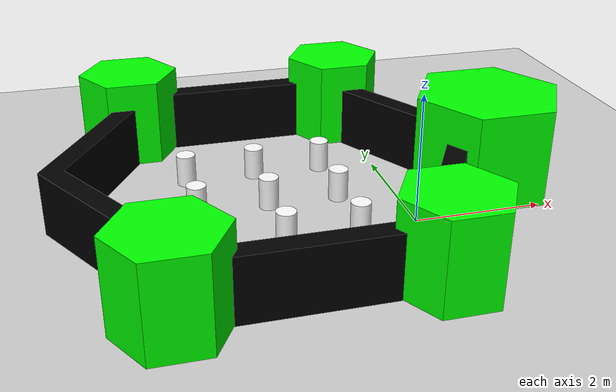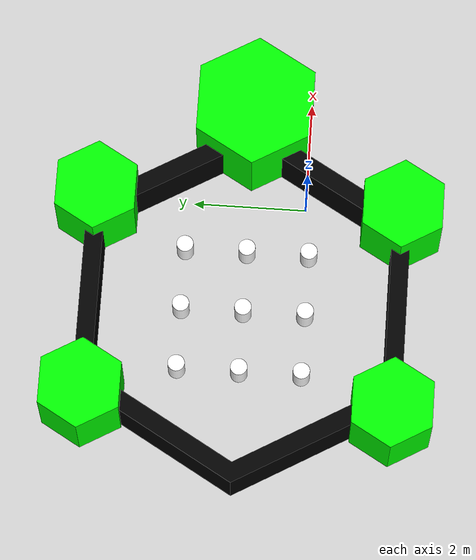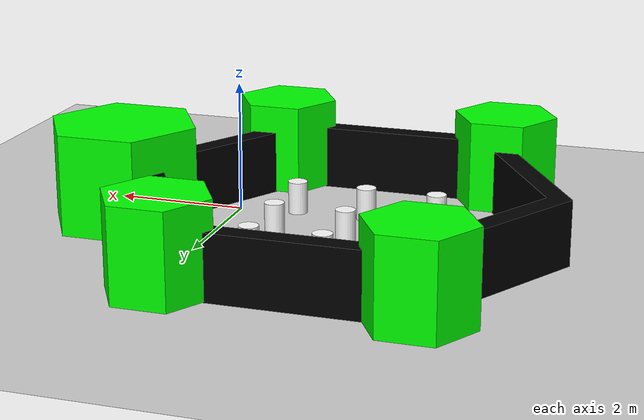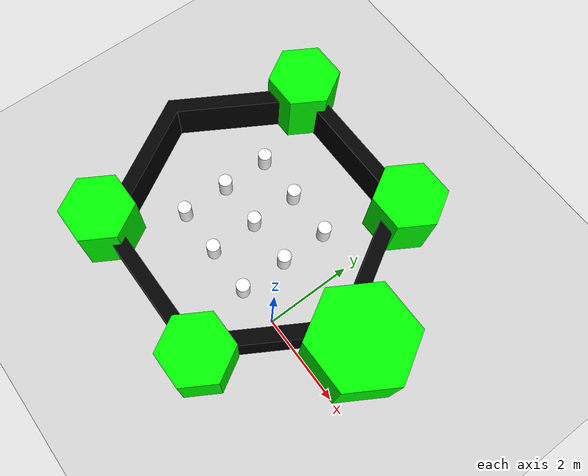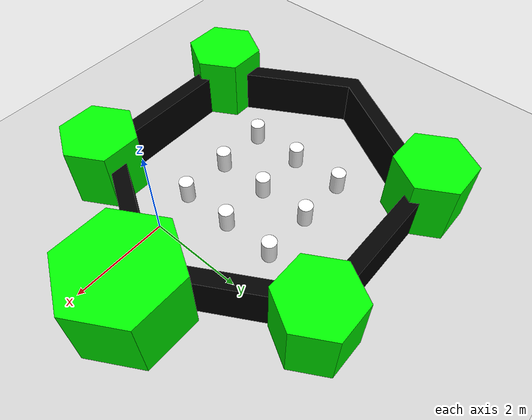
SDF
<?xml version="1.0"?>
<sdf version="1.8">
  <world name="turtlebot3_world">
    <physics type="ode">
      <real_time_update_rate>1000.0</real_time_update_rate>
      <max_step_size>0.001</max_step_size>
      <real_time_factor>1</real_time_factor>
      <ode>
        <solver>
          <type>quick</type>
          <iters>150</iters>
          <precon_iters>0</precon_iters>
          <sor>1.400000</sor>
          <use_dynamic_moi_rescaling>1</use_dynamic_moi_rescaling>
        </solver>
        <constraints>
          <cfm>0.00001</cfm>
          <erp>0.2</erp>
          <contact_max_correcting_vel>2000.000000</contact_max_correcting_vel>
          <contact_surface_layer>0.01000</contact_surface_layer>
        </constraints>
      </ode>
      <gravity>0 0 -9.8</gravity>
    </physics>
    <spherical_coordinates>
      <surface_model>EARTH_WGS84</surface_model>
      <world_frame_orientation>ENU</world_frame_orientation>
      <latitude_deg>47.397971057728974</latitude_deg>
      <longitude_deg> 8.546163739800146</longitude_deg>
      <elevation>0</elevation>
    </spherical_coordinates>

    <include>
      <uri>https://fuel.gazebosim.org/1.0/OpenRobotics/models/Ground Plane</uri>
    </include>

    <include>
      <uri>https://fuel.gazebosim.org/1.0/OpenRobotics/models/Sun</uri>
    </include>

    <include>
      <name>turtlebot3_world</name>
      <uri>model://turtlebot3_world</uri>
      <pose>-2.0 1.0 0 0 0 0</pose>
      <static>true</static>
    </include>
  </world>
</sdf>

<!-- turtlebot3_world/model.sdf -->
<sdf version="1.8">
    <model name='turtlebot3_world'>
      <static>1</static>
      <link name='symbol'>
        <collision name='one_one'>
          <pose>-1.1 -1.1 0.25 0 0 0</pose>
          <geometry>
            <cylinder>
              <radius>0.15</radius>
              <length>0.5</length>
            </cylinder>
          </geometry>
          <max_contacts>10</max_contacts>
          <surface>
            <bounce/>
            <friction>
              <ode/>
            </friction>
            <contact>
              <ode/>
            </contact>
          </surface>
        </collision>

        <visual name='one_one'>
          <pose>-1.1 -1.1 0.25 0 0 0</pose>
          <geometry>
            <cylinder>
              <radius>0.15</radius>
              <length>0.5</length>
            </cylinder>
          </geometry>
          <material>
            <ambient>1 1 1 1</ambient>
            <diffuse>1 1 1 1</diffuse>
            <specular>0.2 0.2 0.2 1</specular>
            <emissive>0 0 0 1</emissive>
          </material>
        </visual>

        <collision name='one_two'>
          <pose>-1.1 0 0.25 0 0 0</pose>
          <geometry>
            <cylinder>
              <radius>0.15</radius>
              <length>0.5</length>
            </cylinder>
          </geometry>
          <max_contacts>10</max_contacts>
          <surface>
            <bounce/>
            <friction>
              <ode/>
            </friction>
            <contact>
              <ode/>
            </contact>
          </surface>
        </collision>

        <visual name='one_two'>
          <pose>-1.1 0 0.25 0 0 0</pose>
          <geometry>
            <cylinder>
              <radius>0.15</radius>
              <length>0.5</length>
            </cylinder>
          </geometry>
          <material>
            <ambient>1 1 1 1</ambient>
            <diffuse>1 1 1 1</diffuse>
            <specular>0.2 0.2 0.2 1</specular>
            <emissive>0 0 0 1</emissive>
          </material>
        </visual>

        <collision name='one_three'>
          <pose>-1.1 1.1 0.25 0 0 0</pose>
          <geometry>
            <cylinder>
              <radius>0.15</radius>
              <length>0.5</length>
            </cylinder>
          </geometry>
          <max_contacts>10</max_contacts>
          <surface>
            <bounce/>
            <friction>
              <ode/>
            </friction>
            <contact>
              <ode/>
            </contact>
          </surface>
        </collision>

        <visual name='one_three'>
          <pose>-1.1 1.1 0.25 0 0 0</pose>
          <geometry>
            <cylinder>
              <radius>0.15</radius>
              <length>0.5</length>
            </cylinder>
          </geometry>
          <material>
            <ambient>1 1 1 1</ambient>
            <diffuse>1 1 1 1</diffuse>
            <specular>0.2 0.2 0.2 1</specular>
            <emissive>0 0 0 1</emissive>
          </material>
        </visual>

        <collision name='two_one'>
          <pose>0 -1.1 0.25 0 0 0</pose>
          <geometry>
            <cylinder>
              <radius>0.15</radius>
              <length>0.5</length>
            </cylinder>
          </geometry>
          <max_contacts>10</max_contacts>
          <surface>
            <bounce/>
            <friction>
              <ode/>
            </friction>
            <contact>
              <ode/>
            </contact>
          </surface>
        </collision>

        <visual name='two_one'>
          <pose>0 -1.1 0.25 0 0 0</pose>
          <geometry>
            <cylinder>
              <radius>0.15</radius>
              <length>0.5</length>
            </cylinder>
          </geometry>
          <material>
            <ambient>1 1 1 1</ambient>
            <diffuse>1 1 1 1</diffuse>
            <specular>0.2 0.2 0.2 1</specular>
            <emissive>0 0 0 1</emissive>
          </material>
        </visual>

        <collision name='two_two'>
          <pose>0 0 0.25 0 0 0</pose>
          <geometry>
            <cylinder>
              <radius>0.15</radius>
              <length>0.5</length>
            </cylinder>
          </geometry>
          <max_contacts>10</max_contacts>
          <surface>
            <bounce/>
            <friction>
              <ode/>
            </friction>
            <contact>
              <ode/>
            </contact>
          </surface>
        </collision>

        <visual name='two_two'>
          <pose>0 0 0.25 0 0 0</pose>
          <geometry>
            <cylinder>
              <radius>0.15</radius>
              <length>0.5</length>
            </cylinder>
          </geometry>
          <material>
            <ambient>1 1 1 1</ambient>
            <diffuse>1 1 1 1</diffuse>
            <specular>0.2 0.2 0.2 1</specular>
            <emissive>0 0 0 1</emissive>
          </material>
        </visual>

        <collision name='two_three'>
          <pose>0 1.1 0.25 0 0 0</pose>
          <geometry>
            <cylinder>
              <radius>0.15</radius>
              <length>0.5</length>
            </cylinder>
          </geometry>
          <max_contacts>10</max_contacts>
          <surface>
            <bounce/>
            <friction>
              <ode/>
            </friction>
            <contact>
              <ode/>
            </contact>
          </surface>
        </collision>

        <visual name='two_three'>
          <pose>0 1.1 0.25 0 0 0</pose>
          <geometry>
            <cylinder>
              <radius>0.15</radius>
              <length>0.5</length>
            </cylinder>
          </geometry>
          <material>
            <ambient>1 1 1 1</ambient>
            <diffuse>1 1 1 1</diffuse>
            <specular>0.2 0.2 0.2 1</specular>
            <emissive>0 0 0 1</emissive>
          </material>
        </visual>

        <collision name='three_one'>
          <pose>1.1 -1.1 0.25 0 0 0</pose>
          <geometry>
            <cylinder>
              <radius>0.15</radius>
              <length>0.5</length>
            </cylinder>
          </geometry>
          <max_contacts>10</max_contacts>
          <surface>
            <bounce/>
            <friction>
              <ode/>
            </friction>
            <contact>
              <ode/>
            </contact>
          </surface>
        </collision>

        <visual name='three_one'>
          <pose>1.1 -1.1 0.25 0 0 0</pose>
          <geometry>
            <cylinder>
              <radius>0.15</radius>
              <length>0.5</length>
            </cylinder>
          </geometry>
          <material>
            <ambient>1 1 1 1</ambient>
            <diffuse>1 1 1 1</diffuse>
            <specular>0.2 0.2 0.2 1</specular>
            <emissive>0 0 0 1</emissive>
          </material>
        </visual>

        <collision name='three_two'>
          <pose>1.1 0 0.25 0 0 0</pose>
          <geometry>
            <cylinder>
              <radius>0.15</radius>
              <length>0.5</length>
            </cylinder>
          </geometry>
          <max_contacts>10</max_contacts>
          <surface>
            <bounce/>
            <friction>
              <ode/>
            </friction>
            <contact>
              <ode/>
            </contact>
          </surface>
        </collision>

        <visual name='three_two'>
          <pose>1.1 0 0.25 0 0 0</pose>
          <geometry>
            <cylinder>
              <radius>0.15</radius>
              <length>0.5</length>
            </cylinder>
          </geometry>
          <material>
            <ambient>1 1 1 1</ambient>
            <diffuse>1 1 1 1</diffuse>
            <specular>0.2 0.2 0.2 1</specular>
            <emissive>0 0 0 1</emissive>
          </material>
        </visual>

        <collision name='three_three'>
          <pose>1.1 1.1 0.25 0 0 0</pose>
          <geometry>
            <cylinder>
              <radius>0.15</radius>
              <length>0.5</length>
            </cylinder>
          </geometry>
          <max_contacts>10</max_contacts>
          <surface>
            <bounce/>
            <friction>
              <ode/>
            </friction>
            <contact>
              <ode/>
            </contact>
          </surface>
        </collision>

        <visual name='three_three'>
          <pose>1.1 1.1 0.25 0 0 0</pose>
          <geometry>
            <cylinder>
              <radius>0.15</radius>
              <length>0.5</length>
            </cylinder>
          </geometry>
          <material>
            <ambient>1 1 1 1</ambient>
            <diffuse>1 1 1 1</diffuse>
            <specular>0.2 0.2 0.2 1</specular>
            <emissive>0 0 0 1</emissive>
          </material>
        </visual>

        <!-- Draw Hexagon -->
        <collision name='head'>
          <pose>3.5 0 -0.5 0 0 0</pose>
          <geometry>
            <mesh>
              <uri>model://turtlebot3_world/meshes/hexagon.dae</uri>
              <scale>0.8 0.8 0.8</scale>
            </mesh>
          </geometry>
          <max_contacts>10</max_contacts>
          <surface>
            <bounce/>
            <friction>
              <ode/>
            </friction>
            <contact>
              <ode/>
            </contact>
          </surface>
        </collision>

        <visual name='head'>
          <pose>3.5 0 -0.5 0 0 0</pose>
          <geometry>
            <mesh>
              <uri>model://turtlebot3_world/meshes/hexagon.dae</uri>
              <scale>0.8 0.8 0.8</scale>
            </mesh>
          </geometry>
          <material>
            <ambient>0 1 0 1</ambient>
            <diffuse>0 1 0 1</diffuse>
            <specular>0.2 0.2 0.2 1</specular>
            <emissive>0 0 0 1</emissive>
          </material>
        </visual>

        <collision name='left_hand'>
          <pose>1.8 2.7 0 0 0 0</pose>
          <geometry>
            <mesh>
              <uri>model://turtlebot3_world/meshes/hexagon.dae</uri>
              <scale>0.55 0.55 0.55</scale>
            </mesh>
          </geometry>
          <max_contacts>10</max_contacts>
          <surface>
            <bounce/>
            <friction>
              <ode/>
            </friction>
            <contact>
              <ode/>
            </contact>
          </surface>
        </collision>

        <visual name='left_hand'>
          <pose>1.8 2.7 0 0 0 0</pose>
          <geometry>
            <mesh>
              <uri>model://turtlebot3_world/meshes/hexagon.dae</uri>
              <scale>0.55 0.55 0.55</scale>
            </mesh>
          </geometry>
          <material>
            <ambient>0 1 0 1</ambient>
            <diffuse>0 1 0 1</diffuse>
            <specular>0.2 0.2 0.2 1</specular>
            <emissive>0 0 0 1</emissive>
          </material>
        </visual>

        <collision name='right_hand'>
          <pose>1.8 -2.7 0 0 0 0</pose>
          <geometry>
            <mesh>
              <uri>model://turtlebot3_world/meshes/hexagon.dae</uri>
              <scale>0.55 0.55 0.55</scale>
            </mesh>
          </geometry>
          <max_contacts>10</max_contacts>
          <surface>
            <bounce/>
            <friction>
              <ode/>
            </friction>
            <contact>
              <ode/>
            </contact>
          </surface>
        </collision>

        <visual name='right_hand'>
          <pose>1.8 -2.7 0 0 0 0</pose>
          <geometry>
            <mesh>
              <uri>model://turtlebot3_world/meshes/hexagon.dae</uri>
              <scale>0.55 0.55 0.55</scale>
            </mesh>
          </geometry>
          <material>
            <ambient>0 1 0 1</ambient>
            <diffuse>0 1 0 1</diffuse>
            <specular>0.2 0.2 0.2 1</specular>
            <emissive>0 0 0 1</emissive>
          </material>
        </visual>

        <collision name='left_foot'>
          <pose>-1.8 2.7 0 0 0 0</pose>
          <geometry>
            <mesh>
              <uri>model://turtlebot3_world/meshes/hexagon.dae</uri>
              <scale>0.55 0.55 0.55</scale>
            </mesh>
          </geometry>
          <max_contacts>10</max_contacts>
          <surface>
            <bounce/>
            <friction>
              <ode/>
            </friction>
            <contact>
              <ode/>
            </contact>
          </surface>
        </collision>

        <visual name='left_foot'>
          <pose>-1.8 2.7 0 0 0 0</pose>
          <geometry>
            <mesh>
              <uri>model://turtlebot3_world/meshes/hexagon.dae</uri>
              <scale>0.55 0.55 0.55</scale>
            </mesh>
          </geometry>
          <material>
            <ambient>0 1 0 1</ambient>
            <diffuse>0 1 0 1</diffuse>
            <specular>0.2 0.2 0.2 1</specular>
            <emissive>0 0 0 1</emissive>
          </material>
        </visual>

        <collision name='right_foot'>
          <pose>-1.8 -2.7 0 0 0 0</pose>
          <geometry>
            <mesh>
              <uri>model://turtlebot3_world/meshes/hexagon.dae</uri>
              <scale>0.55 0.55 0.55</scale>
            </mesh>
          </geometry>
          <max_contacts>10</max_contacts>
          <surface>
            <bounce/>
            <friction>
              <ode/>
            </friction>
            <contact>
              <ode/>
            </contact>
          </surface>
        </collision>

        <visual name='right_foot'>
          <pose>-1.8 -2.7 0 0 0 0</pose>
          <geometry>
            <mesh>
              <uri>model://turtlebot3_world/meshes/hexagon.dae</uri>
              <scale>0.55 0.55 0.55</scale>
            </mesh>
          </geometry>
          <material>
            <ambient>0 1 0 1</ambient>
            <diffuse>0 1 0 1</diffuse>
            <specular>0.2 0.2 0.2 1</specular>
            <emissive>0 0 0 1</emissive>
          </material>
        </visual>

        <!-- Draw Wall -->
        <collision name='body'>
          <pose>0 0 -0.3 0 0 -1.5708</pose>
          <geometry>
            <mesh>
              <uri>model://turtlebot3_world/meshes/wall.dae</uri>
              <scale>0.25 0.25 0.25</scale>
            </mesh>
          </geometry>
          <max_contacts>10</max_contacts>
          <surface>
            <bounce/>
            <friction>
              <ode/>
            </friction>
            <contact>
              <ode/>
            </contact>
          </surface>
        </collision>

        <visual name='body'>
          <pose>0 0 -0.3 0 0 -1.5708</pose>
          <geometry>
            <mesh>
              <uri>model://turtlebot3_world/meshes/wall.dae</uri>
              <scale>0.25 0.25 0.25</scale>
            </mesh>
          </geometry>
          <material>
            <ambient>0 0 0 1</ambient>
            <diffuse>0 0 0 1</diffuse>
            <specular>0 0 0 1</specular>
            <emissive>0 0 0 1</emissive>
          </material>
        </visual>
      </link>
    </model>
</sdf>
